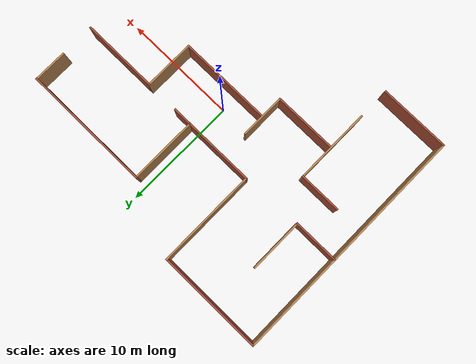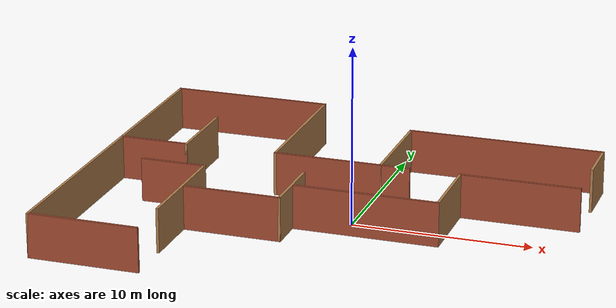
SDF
<?xml version='1.0'?>
<sdf version='1.6'>
  <model name='layout2'>
    <pose frame=''>-1.37 0.97 0 0 -0 0</pose>
    <link name='Wall_0'>
      <collision name='Wall_0_Collision'>
        <geometry>
          <box>
            <size>8.25 0.15 2.5</size>
          </box>
        </geometry>
        <pose frame=''>0 0 1.25 0 -0 0</pose>
      </collision>
      <visual name='Wall_0_Visual'>
        <pose frame=''>0 0 1.25 0 -0 0</pose>
        <geometry>
          <box>
            <size>8.25 0.15 2.5</size>
          </box>
        </geometry>
        <material>
          <script>
            <uri>file://media/materials/scripts/gazebo.material</uri>
            <name>Gazebo/Bricks</name>
          </script>
          <ambient>1 1 1 1</ambient>
        </material>
        <meta>
          <layer>0</layer>
        </meta>
      </visual>
      <pose frame=''>2.5 -2.4 0 0 -0 0</pose>
    </link>
    <link name='Wall_1'>
      <collision name='Wall_1_Collision'>
        <geometry>
          <box>
            <size>4.5 0.15 2.5</size>
          </box>
        </geometry>
        <pose frame=''>0 0 1.25 0 -0 0</pose>
      </collision>
      <visual name='Wall_1_Visual'>
        <pose frame=''>0 0 1.25 0 -0 0</pose>
        <geometry>
          <box>
            <size>4.5 0.15 2.5</size>
          </box>
        </geometry>
        <material>
          <script>
            <uri>file://media/materials/scripts/gazebo.material</uri>
            <name>Gazebo/Wood</name>
          </script>
          <ambient>1 1 1 1</ambient>
        </material>
        <meta>
          <layer>0</layer>
        </meta>
      </visual>
      <pose frame=''>6.55 -0.225 0 0 -0 1.5708</pose>
    </link>
    <link name='Wall_10'>
      <collision name='Wall_10_Collision'>
        <geometry>
          <box>
            <size>6.25 0.15 2.5</size>
          </box>
        </geometry>
        <pose frame=''>0 0 1.25 0 -0 0</pose>
      </collision>
      <visual name='Wall_10_Visual'>
        <pose frame=''>0 0 1.25 0 -0 0</pose>
        <geometry>
          <box>
            <size>6.25 0.15 2.5</size>
          </box>
        </geometry>
        <material>
          <script>
            <uri>file://media/materials/scripts/gazebo.material</uri>
            <name>Gazebo/Bricks</name>
          </script>
          <ambient>1 1 1 1</ambient>
        </material>
        <meta>
          <layer>0</layer>
        </meta>
      </visual>
      <pose frame=''>-10.1 -10.55 0 0 -0 0</pose>
    </link>
    <link name='Wall_12'>
      <collision name='Wall_12_Collision'>
        <geometry>
          <box>
            <size>3.75 0.15 2.5</size>
          </box>
        </geometry>
        <pose frame=''>0 0 1.25 0 -0 0</pose>
      </collision>
      <visual name='Wall_12_Visual'>
        <pose frame=''>0 0 1.25 0 -0 0</pose>
        <geometry>
          <box>
            <size>3.75 0.15 2.5</size>
          </box>
        </geometry>
        <material>
          <script>
            <uri>file://media/materials/scripts/gazebo.material</uri>
            <name>Gazebo/Bricks</name>
          </script>
          <ambient>1 1 1 1</ambient>
        </material>
        <meta>
          <layer>0</layer>
        </meta>
      </visual>
      <pose frame=''>-8.85 -1.2 0 0 -0 3.14159</pose>
    </link>
    <link name='Wall_14'>
      <collision name='Wall_14_Collision'>
        <geometry>
          <box>
            <size>5.5 0.15 2.5</size>
          </box>
        </geometry>
        <pose frame=''>0 0 1.25 0 -0 0</pose>
      </collision>
      <visual name='Wall_14_Visual'>
        <pose frame=''>0 0 1.25 0 -0 0</pose>
        <geometry>
          <box>
            <size>5.5 0.15 2.5</size>
          </box>
        </geometry>
        <material>
          <script>
            <uri>file://media/materials/scripts/gazebo.material</uri>
            <name>Gazebo/Bricks</name>
          </script>
          <ambient>1 1 1 1</ambient>
        </material>
        <meta>
          <layer>0</layer>
        </meta>
      </visual>
      <pose frame=''>-4.23246 -4.35504 0 0 -0 0</pose>
    </link>
    <link name='Wall_15'>
      <collision name='Wall_15_Collision'>
        <geometry>
          <box>
            <size>4 0.15 2.5</size>
          </box>
        </geometry>
        <pose frame=''>0 0 1.25 0 -0 0</pose>
      </collision>
      <visual name='Wall_15_Visual'>
        <pose frame=''>0 0 1.25 0 -0 0</pose>
        <geometry>
          <box>
            <size>4 0.15 2.5</size>
          </box>
        </geometry>
        <material>
          <script>
            <uri>file://media/materials/scripts/gazebo.material</uri>
            <name>Gazebo/Wood</name>
          </script>
          <ambient>1 1 1 1</ambient>
        </material>
        <meta>
          <layer>0</layer>
        </meta>
      </visual>
      <pose frame=''>-1.55746 -2.43004 0 0 -0 1.5708</pose>
    </link>
    <link name='Wall_17'>
      <collision name='Wall_17_Collision'>
        <geometry>
          <box>
            <size>1.75 0.15 2.5</size>
          </box>
        </geometry>
        <pose frame=''>0 0 1.25 0 -0 0</pose>
      </collision>
      <visual name='Wall_17_Visual'>
        <pose frame=''>0 0 1.25 0 -0 0</pose>
        <geometry>
          <box>
            <size>1.75 0.15 2.5</size>
          </box>
        </geometry>
        <material>
          <script>
            <uri>file://media/materials/scripts/gazebo.material</uri>
            <name>Gazebo/Bricks</name>
          </script>
          <ambient>1 1 1 1</ambient>
        </material>
        <meta>
          <layer>0</layer>
        </meta>
      </visual>
      <pose frame=''>2.85 1.95 0 0 -0 0</pose>
    </link>
    <link name='Wall_19'>
      <collision name='Wall_19_Collision'>
        <geometry>
          <box>
            <size>4 0.15 2.5</size>
          </box>
        </geometry>
        <pose frame=''>0 0 1.25 0 -0 0</pose>
      </collision>
      <visual name='Wall_19_Visual'>
        <pose frame=''>0 0 1.25 0 -0 0</pose>
        <geometry>
          <box>
            <size>4 0.15 2.5</size>
          </box>
        </geometry>
        <material>
          <script>
            <uri>file://media/materials/scripts/gazebo.material</uri>
            <name>Gazebo/Bricks</name>
          </script>
          <ambient>1 1 1 1</ambient>
        </material>
        <meta>
          <layer>0</layer>
        </meta>
      </visual>
      <pose frame=''>-11.1722 1.7133 0 0 -0 0</pose>
    </link>
    <link name='Wall_2'>
      <collision name='Wall_2_Collision'>
        <geometry>
          <box>
            <size>6.75 0.15 2.5</size>
          </box>
        </geometry>
        <pose frame=''>0 0 1.25 0 -0 0</pose>
      </collision>
      <visual name='Wall_2_Visual'>
        <pose frame=''>0 0 1.25 0 -0 0</pose>
        <geometry>
          <box>
            <size>6.75 0.15 2.5</size>
          </box>
        </geometry>
        <material>
          <script>
            <uri>file://media/materials/scripts/gazebo.material</uri>
            <name>Gazebo/Bricks</name>
          </script>
          <ambient>1 1 1 1</ambient>
        </material>
        <meta>
          <layer>0</layer>
        </meta>
      </visual>
      <pose frame=''>9.85 1.95 0 0 -0 0</pose>
    </link>
    <link name='Wall_20'>
      <collision name='Wall_20_Collision'>
        <geometry>
          <box>
            <size>4.75 0.15 2.5</size>
          </box>
        </geometry>
        <pose frame=''>0 0 1.25 0 -0 0</pose>
      </collision>
      <visual name='Wall_20_Visual'>
        <pose frame=''>0 0 1.25 0 -0 0</pose>
        <geometry>
          <box>
            <size>4.75 0.15 2.5</size>
          </box>
        </geometry>
        <material>
          <script>
            <uri>file://media/materials/scripts/gazebo.material</uri>
            <name>Gazebo/Wood</name>
          </script>
          <ambient>1 1 1 1</ambient>
        </material>
        <meta>
          <layer>0</layer>
        </meta>
      </visual>
      <pose frame=''>-9.24716 4.0133 0 0 -0 1.5708</pose>
    </link>
    <link name='Wall_22'>
      <collision name='Wall_22_Collision'>
        <geometry>
          <box>
            <size>6.75 0.15 2.5</size>
          </box>
        </geometry>
        <pose frame=''>0 0 1.25 0 -0 0</pose>
      </collision>
      <visual name='Wall_22_Visual'>
        <pose frame=''>0 0 1.25 0 -0 0</pose>
        <geometry>
          <box>
            <size>6.75 0.15 2.5</size>
          </box>
        </geometry>
        <material>
          <script>
            <uri>file://media/materials/scripts/gazebo.material</uri>
            <name>Gazebo/Wood</name>
          </script>
          <ambient>1 1 1 1</ambient>
        </material>
        <meta>
          <layer>0</layer>
        </meta>
      </visual>
      <pose frame=''>-7.05 -4.5 0 0 0 -1.5708</pose>
    </link>
    <link name='Wall_24'>
      <collision name='Wall_24_Collision'>
        <geometry>
          <box>
            <size>3 0.15 2.5</size>
          </box>
        </geometry>
        <pose frame=''>0 0 1.25 0 -0 0</pose>
      </collision>
      <visual name='Wall_24_Visual'>
        <pose frame=''>0 0 1.25 0 -0 0</pose>
        <geometry>
          <box>
            <size>3 0.15 2.5</size>
          </box>
        </geometry>
        <material>
          <script>
            <uri>file://media/materials/scripts/gazebo.material</uri>
            <name>Gazebo/Wood</name>
          </script>
          <ambient>1 1 1 1</ambient>
        </material>
        <meta>
          <layer>0</layer>
        </meta>
      </visual>
      <pose frame=''>13.15 6.375 0 0 0 -1.5708</pose>
    </link>
    <link name='Wall_4'>
      <collision name='Wall_4_Collision'>
        <geometry>
          <box>
            <size>11.25 0.15 2.5</size>
          </box>
        </geometry>
        <pose frame=''>0 0 1.25 0 -0 0</pose>
      </collision>
      <visual name='Wall_4_Visual'>
        <pose frame=''>0 0 1.25 0 -0 0</pose>
        <geometry>
          <box>
            <size>11.25 0.15 2.5</size>
          </box>
        </geometry>
        <material>
          <script>
            <uri>file://media/materials/scripts/gazebo.material</uri>
            <name>Gazebo/Bricks</name>
          </script>
          <ambient>1 1 1 1</ambient>
        </material>
        <meta>
          <layer>0</layer>
        </meta>
      </visual>
      <pose frame=''>7.6 7.8 0 0 -0 3.14159</pose>
    </link>
    <link name='Wall_5'>
      <collision name='Wall_5_Collision'>
        <geometry>
          <box>
            <size>6 0.15 2.5</size>
          </box>
        </geometry>
        <pose frame=''>0 0 1.25 0 -0 0</pose>
      </collision>
      <visual name='Wall_5_Visual'>
        <pose frame=''>0 0 1.25 0 -0 0</pose>
        <geometry>
          <box>
            <size>6 0.15 2.5</size>
          </box>
        </geometry>
        <material>
          <script>
            <uri>file://media/materials/scripts/gazebo.material</uri>
            <name>Gazebo/Wood</name>
          </script>
          <ambient>1 1 1 1</ambient>
        </material>
        <meta>
          <layer>0</layer>
        </meta>
      </visual>
      <pose frame=''>2.05 4.875 0 0 0 -1.5708</pose>
    </link>
    <link name='Wall_6'>
      <collision name='Wall_6_Collision'>
        <geometry>
          <box>
            <size>6.25 0.15 2.5</size>
          </box>
        </geometry>
        <pose frame=''>0 0 1.25 0 -0 0</pose>
      </collision>
      <visual name='Wall_6_Visual'>
        <pose frame=''>0 0 1.25 0 -0 0</pose>
        <geometry>
          <box>
            <size>6.25 0.15 2.5</size>
          </box>
        </geometry>
        <material>
          <script>
            <uri>file://media/materials/scripts/gazebo.material</uri>
            <name>Gazebo/Bricks</name>
          </script>
          <ambient>1 1 1 1</ambient>
        </material>
        <meta>
          <layer>0</layer>
        </meta>
      </visual>
      <pose frame=''>-0.999999 1.95 0 0 -0 3.14159</pose>
    </link>
    <link name='Wall_7'>
      <collision name='Wall_7_Collision'>
        <geometry>
          <box>
            <size>8.75 0.15 2.5</size>
          </box>
        </geometry>
        <pose frame=''>0 0 1.25 0 -0 0</pose>
      </collision>
      <visual name='Wall_7_Visual'>
        <pose frame=''>0 0 1.25 0 -0 0</pose>
        <geometry>
          <box>
            <size>8.75 0.15 2.5</size>
          </box>
        </geometry>
        <material>
          <script>
            <uri>file://media/materials/scripts/gazebo.material</uri>
            <name>Gazebo/Wood</name>
          </script>
          <ambient>1 1 1 1</ambient>
        </material>
        <meta>
          <layer>0</layer>
        </meta>
      </visual>
      <pose frame=''>-4.05 6.25 0 0 -0 1.5708</pose>
    </link>
    <link name='Wall_8'>
      <collision name='Wall_8_Collision'>
        <geometry>
          <box>
            <size>9.25 0.15 2.5</size>
          </box>
        </geometry>
        <pose frame=''>0 0 1.25 0 -0 0</pose>
      </collision>
      <visual name='Wall_8_Visual'>
        <pose frame=''>0 0 1.25 0 -0 0</pose>
        <geometry>
          <box>
            <size>9.25 0.15 2.5</size>
          </box>
        </geometry>
        <material>
          <script>
            <uri>file://media/materials/scripts/gazebo.material</uri>
            <name>Gazebo/Bricks</name>
          </script>
          <ambient>1 1 1 1</ambient>
        </material>
        <meta>
          <layer>0</layer>
        </meta>
      </visual>
      <pose frame=''>-8.6 10.55 0 0 -0 3.14159</pose>
    </link>
    <link name='Wall_9'>
      <collision name='Wall_9_Collision'>
        <geometry>
          <box>
            <size>21.25 0.15 2.5</size>
          </box>
        </geometry>
        <pose frame=''>0 0 1.25 0 -0 0</pose>
      </collision>
      <visual name='Wall_9_Visual'>
        <pose frame=''>0 0 1.25 0 -0 0</pose>
        <geometry>
          <box>
            <size>21.25 0.15 2.5</size>
          </box>
        </geometry>
        <material>
          <script>
            <uri>file://media/materials/scripts/gazebo.material</uri>
            <name>Gazebo/Wood</name>
          </script>
          <ambient>1 1 1 1</ambient>
        </material>
        <meta>
          <layer>0</layer>
        </meta>
      </visual>
      <pose frame=''>-13.15 0 0 0 0 -1.5708</pose>
    </link>
    <static>1</static>
  </model>
</sdf>
